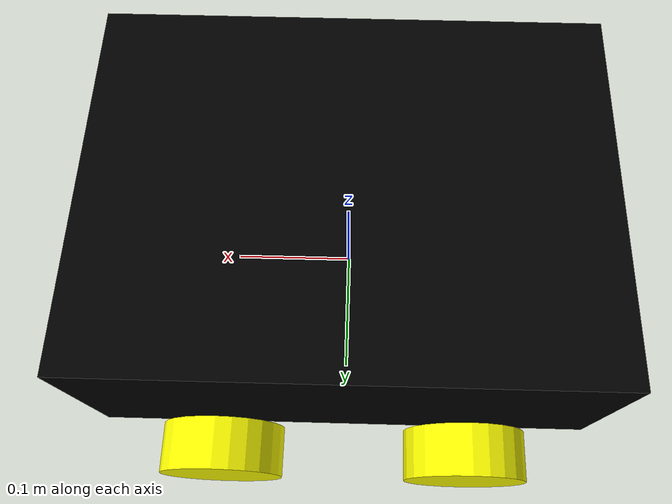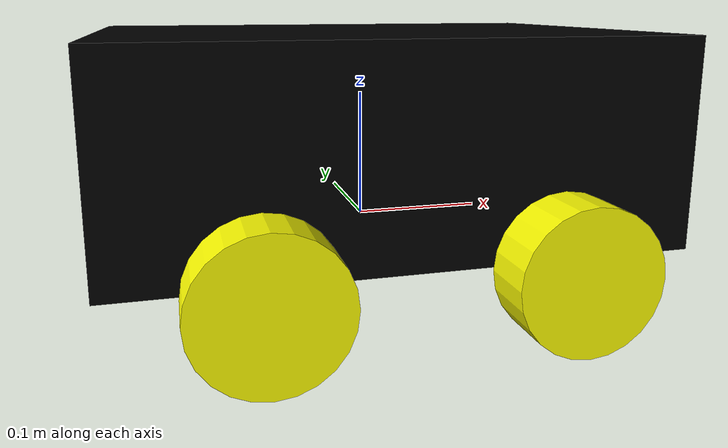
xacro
<?xml version="1.0"?>
<robot xmlns:xacro="http://www.ros.org/wiki/xacro">

    <xacro:include filename="inertial_macros.xacro"/>

    <material name="black">
        <color rgba="0 0 0 1"/>
    </material>

    <material name="yellow">
        <color rgba="1 1 0 1"/>
    </material>

    <material name="gray">
        <color rgba="0.5 0.5 0.5 1"/>
    </material>

    <material name="blue">
        <color rgba="0 0 1 1"/>
    </material>

    <material name="olive">
        <color rgba="0.5 0.5 0 1"/>
    </material>

    <!-- base_link -->
    <link name="base_link">
    </link>

    <!-- chassis -->
    <joint name="chassis_joint" type="fixed">
        <parent link="base_link"/>
        <child link="chassis_link"/>
        <origin xyz="-0.1 0 0"/>
    </joint>

    <link name="chassis_link">
        <visual>
            <geometry>
                <box size="0.4 0.3 0.15"/>
            </geometry>
            <material name="black"/>
            <origin xyz="0.10 0 0.075" rpy="0 0 0"/>
        </visual>
        <collision>
            <geometry>
                <box size="0.4 0.3 0.15"/>
            </geometry>
            <origin xyz="0.10 0 0.075" rpy="0 0 0"/>
        </collision>
        <xacro:inertial_box mass="0.5" x="0.4" y="0.3" z="0.15">
            <origin xyz="0.10 0 0.075" rpy="0 0 0"/>
        </xacro:inertial_box>
    </link>

    <gazebo reference="chassis_link">
        <material>Gazebo/Black</material>
    </gazebo>

    <!--Macro Wheel-->
    <xacro:macro name="wheel_link" params="prefix place">
        <link name="${prefix}_wheel_${place}_link">
            <visual>
                <geometry>
                    <cylinder radius="0.05" length="0.04" />
                </geometry>
                <material name="yellow" />
            </visual>
            <collision>
                <geometry>
                    <cylinder radius="0.05" length="0.04" />
                </geometry>
                <origin xyz="0 0 0" rpy="0 0 0" />
            </collision>
            <xacro:inertial_cylinder mass="0.1" length="0.04" radius="0.05">
                <origin xyz="0 0 0" rpy="0 0 0" />
            </xacro:inertial_cylinder>
        </link>

        <gazebo reference="${prefix}_wheel_${place}_link">
            <material>Gazebo/Yellow</material>
        </gazebo>
    </xacro:macro>

    <!--Left Wheel Front-->
   <joint name="left_wheel_front_joint" type="continuous">
        <parent link="base_link" />
        <child link="left_wheel_front_link" />
        <origin xyz="0.1 0.175 0" rpy="${pi/2} 0 0" />
        <axis xyz="0 0 1" />
    </joint>

    <xacro:wheel_link prefix="left" place="front" />

    <!--Left Wheel back-->
    <joint name="left_wheel_back_joint" type="continuous">
        <parent link="base_link" />
        <child link="left_wheel_back_link" />
        <origin xyz="-0.1 0.175 0" rpy="${pi/2} 0 0" />
        <axis xyz="0 0 1" />
    </joint>

    <xacro:wheel_link prefix="left" place="back" />

    <!--Right Wheel Front-->
    <joint name="right_wheel_front_joint" type="continuous">
        <parent link="base_link" />
        <child link="right_wheel_front_link" />
        <origin xyz="0.1 -0.175 0" rpy="${pi/2} 0 0" />
        <axis xyz="0 0 -1" />
    </joint>

    <xacro:wheel_link prefix="right" place="front" />

     <!--right Wheel Back-->
    <joint name="right_wheel_back_joint" type="continuous">
        <parent link="base_link" />
        <child link="right_wheel_back_link" />
        <origin xyz="-0.1 -0.175 0" rpy="${pi/2} 0 0" />
        <axis xyz="0 0 -1" />
    </joint>

    <xacro:wheel_link prefix="right" place="back" />

</robot>
